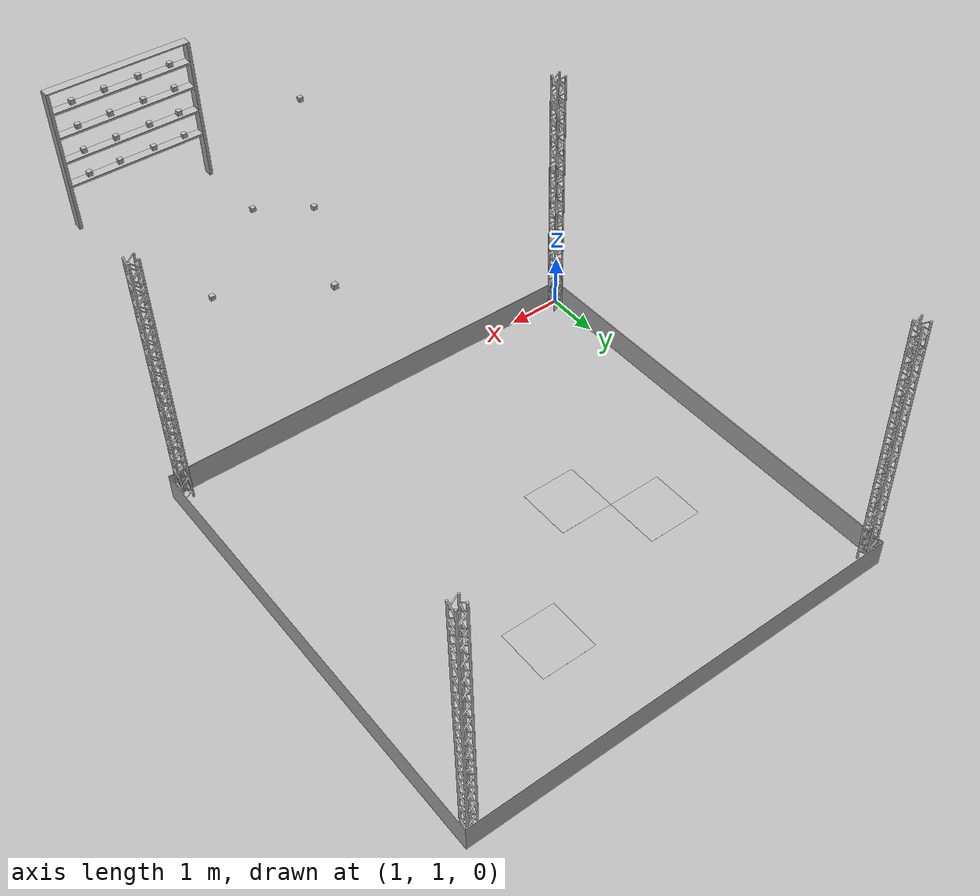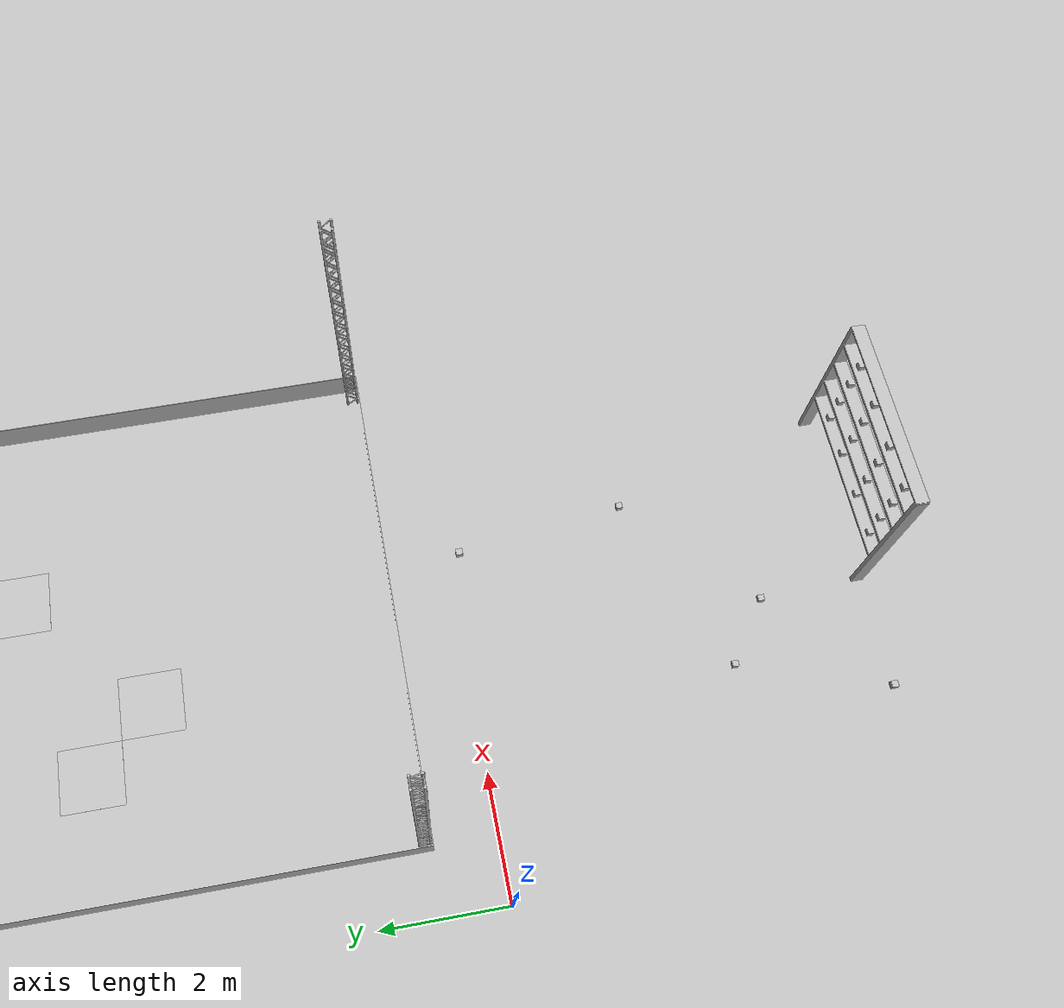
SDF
<?xml version="1.0" encoding="UTF-8"?>
<sdf version="1.9">
  <world name="default">
    <!-- Plugins compatíveis com Gz Garden -->
    <plugin name="gz::sim::systems::StaticTransformRepublisher" filename="gz-sim-static-transform-republisher-system"/>
    <plugin name="gz::sim::systems::Physics" filename="gz-sim-physics-system"/>
    <plugin name="gz::sim::systems::UserCommands" filename="gz-sim-user-commands-system"/>
    <plugin name="gz::sim::systems::SceneBroadcaster" filename="gz-sim-scene-broadcaster-system"/>
    <plugin name="gz::sim::systems::Contact" filename="gz-sim-contact-system"/>
    <plugin name="gz::sim::systems::Imu" filename="gz-sim-imu-system"/>
    <plugin name="gz::sim::systems::AirPressure" filename="gz-sim-air-pressure-system"/>
    <plugin name="gz::sim::systems::ApplyLinkWrench" filename="gz-sim-apply-link-wrench-system"/>
    <plugin name="gz::sim::systems::NavSat" filename="gz-sim-navsat-system"/>
    <plugin name="gz::sim::systems::Sensors" filename="gz-sim-sensors-system">
      <render_engine>ogre2</render_engine>
    </plugin>

    <!-- Coordenadas esféricas -->
    <spherical_coordinates>
      <surface_model>EARTH_WGS84</surface_model>
      <latitude_deg>37.411802</latitude_deg>
      <longitude_deg>-121.995739</longitude_deg>
      <elevation>0.0</elevation>
      <heading_deg>0</heading_deg>
    </spherical_coordinates>

    <!-- Configurações de física -->
    <physics name="default_physics" default="0" type="ode">
      <gravity>0 0 -9.8066</gravity>
      <max_step_size>0.004</max_step_size>
      <real_time_factor>1.0</real_time_factor>
      <real_time_update_rate>250</real_time_update_rate>
      <magnetic_field>6.0e-06 2.3e-05 -4.2e-05</magnetic_field>
    </physics>

    <!-- Configurações da cena -->
    <scene>
      <shadows>false</shadows>
      <ambient>0.4 0.4 0.4 1</ambient>
      <background>0.7 0.7 0.7 1</background>
    </scene>

    <!-- Luz do sol -->
    <light type="directional" name="sun">
      <pose>250 250 600 0 0 0</pose>
      <diffuse>0.8 0.8 0.8 1</diffuse>
      <specular>0.2 0.2 0.2 1</specular>
      <attenuation>
        <range>1000</range>
        <constant>0.9</constant>
        <linear>0.01</linear>
        <quadratic>0.001</quadratic>
      </attenuation>
      <direction>0 0 -1</direction>
    </light>

    <!-- Plano de chão -->
    <model name="ground_plane">
      <static>true</static>
      <link name="link">
        <collision name="collision">
          <geometry>
            <plane>
              <normal>0 0 1</normal>
              <size>250 250</size>
            </plane>
          </geometry>
          <surface>
            <friction>
              <ode>
                <mu>1</mu>
                <mu2>1</mu2>
              </ode>
            </friction>
          </surface>
        </collision>
        <visual name="grass">
          <geometry>
            <mesh>
              <uri>file://grass_plane/meshes/grass_plane.dae</uri>
            </mesh>
          </geometry>
        </visual>
      </link>
    </model>

    <!-- Inclusão dos modelos da arena -->
    <include>
      <uri>model://arena_spawn</uri>
      <pose>1 1 0.0005 0 0 0</pose>
    </include>

    <!-- Inclusão dos modelos de base terrestre -->
    <include>
      <uri>model://land_base</uri>
      <pose>4 5 0 0 0 0</pose>
      <name>land_base_1</name>
    </include>
    <include>
      <uri>model://land_base</uri>
      <pose>6 7 0 0 0 0</pose>
      <name>land_base_2</name>
    </include>
    <include>
      <uri>model://land_base</uri>
      <pose>3 6 0 0 0 0</pose>
      <name>land_base_3</name>
    </include>
    <include>
      <uri>model://Estante</uri>
      <pose>3 6 0 0 0 0</pose>
      <name>estante</name>
    </include>
    <include>
      <uri>model://Pacote_A</uri>
      <pose>3 1 0 0 0 0</pose>
      <name>pacote_A</name>
    </include>
    <include>
      <uri>model://Pacote_B</uri>
      <pose>3 1 0 0 0 0</pose>
      <name>pacote_B</name>
    </include>
    <include>
      <uri>model://Pacote_C</uri>
      <pose>3 1 0 0 0 0</pose>
      <name>pacote_C</name>
    </include>
    <include>
      <uri>model://Pacote_D</uri>
      <pose>3 1 0 0 0 0</pose>
      <name>pacote_D</name>
    </include>
    <include>
      <uri>model://Pacote_E</uri>
      <pose>3 1 0 0 0 0</pose>
      <name>pacote_E</name>
    </include>

    <!-- Modelo do vazio -->
    <model name="the_void">
      <static>true</static>
      <link name="link">
        <pose>0 0 0.1 0 0 0</pose>
        <visual name="the_void">
          <pose>0 0 2 0 0 0</pose>
          <geometry>
            <sphere>
              <radius>0.25</radius>
            </sphere>
          </geometry>
          <material>
            <ambient>0 0 0 1</ambient>
            <diffuse>0 0 0 1</diffuse>
            <specular>0 0 0 1</specular>
          </material>
        </visual>
      </link>
      <pose>-1000 -1000 0 0 0 0</pose>
    </model>

    <!-- Configurações da GUI -->
    <gui fullscreen="false">
      <plugin filename="MinimalScene" name="3D View">
        <gz-gui>
          <title>3D View</title>
          <property type="bool" key="showTitleBar">false</property>
          <property type="string" key="state">docked</property>
        </gz-gui>
        <engine>ogre2</engine>
        <scene>scene</scene>
        <ambient_light>0.4 0.4 0.4</ambient_light>
        <background_color>0.8 0.8 0.8</background_color>
        <camera_pose>-6 0 6 0 0.5 0</camera_pose>
        <camera_clip>
          <near>0.25</near>
          <far>25000</far>
        </camera_clip>
      </plugin>
      <plugin filename="EntityContextMenuPlugin" name="Entity context menu">
        <gz-gui>
          <property key="state" type="string">floating</property>
          <property key="width" type="double">5</property>
          <property key="height" type="double">5</property>
          <property key="showTitleBar" type="bool">false</property>
        </gz-gui>
      </plugin>
      <plugin filename="GzSceneManager" name="Scene Manager">
        <gz-gui>
          <property key="resizable" type="bool">false</property>
          <property key="width" type="double">5</property>
          <property key="height" type="double">5</property>
          <property key="state" type="string">floating</property>
          <property key="showTitleBar" type="bool">false</property>
        </gz-gui>
      </plugin>
      <plugin filename="InteractiveViewControl" name="Interactive view control">
        <gz-gui>
          <property key="resizable" type="bool">false</property>
          <property key="width" type="double">5</property>
          <property key="height" type="double">5</property>
          <property key="state" type="string">floating</property>
          <property key="showTitleBar" type="bool">false</property>
        </gz-gui>
      </plugin>
      <plugin filename="CameraTracking" name="Camera Tracking">
        <gz-gui>
          <property key="resizable" type="bool">false</property>
          <property key="width" type="double">5</property>
          <property key="height" type="double">5</property>
          <property key="state" type="string">floating</property>
          <property key="showTitleBar" type="bool">false</property>
        </gz-gui>
      </plugin>
      <plugin filename="MarkerManager" name="Marker manager">
        <gz-gui>
          <property key="resizable" type="bool">false</property>
          <property key="width" type="double">5</property>
          <property key="height" type="double">5</property>
          <property key="state" type="string">floating</property>
          <property key="showTitleBar" type="bool">false</property>
        </gz-gui>
      </plugin>
      <plugin filename="SelectEntities" name="Select Entities">
        <gz-gui>
          <anchors target="Select entities">
            <line own="right" target="right"/>
            <line own="top" target="top"/>
          </anchors>
          <property key="resizable" type="bool">false</property>
          <property key="width" type="double">5</property>
          <property key="height" type="double">5</property>
          <property key="state" type="string">floating</property>
          <property key="showTitleBar" type="bool">false</property>
        </gz-gui>
      </plugin>
      <plugin filename="VisualizationCapabilities" name="Visualization Capabilities">
        <gz-gui>
          <property key="resizable" type="bool">false</property>
          <property key="width" type="double">5</property>
          <property key="height" type="double">5</property>
          <property key="state" type="string">floating</property>
          <property key="showTitleBar" type="bool">false</property>
        </gz-gui>
      </plugin>
      <plugin filename="Spawn" name="Spawn Entities">
        <gz-gui>
          <anchors target="Select entities">
            <line own="right" target="right"/>
            <line own="top" target="top"/>
          </anchors>
          <property key="resizable" type="bool">false</property>
          <property key="width" type="double">5</property>
          <property key="height" type="double">5</property>
          <property key="state" type="string">floating</property>
          <property key="showTitleBar" type="bool">false</property>
        </gz-gui>
      </plugin>
      <plugin name="World control" filename="WorldControl">
        <gz-gui>
          <title>World control</title>
          <property type="bool" key="showTitleBar">0</property>
          <property type="bool" key="resizable">0</property>
          <property type="double" key="height">72</property>
          <property type="double" key="width">121</property>
          <property type="double" key="z">1</property>
          <property type="string" key="state">floating</property>
          <anchors target="3D View">
            <line own="left" target="left"/>
            <line own="bottom" target="bottom"/>
          </anchors>
        </gz-gui>
        <play_pause>1</play_pause>
        <step>1</step>
        <start_paused>1</start_paused>
      </plugin>
      <plugin name="World stats" filename="WorldStats">
        <gz-gui>
          <title>World stats</title>
          <property type="bool" key="showTitleBar">0</property>
          <property type="bool" key="resizable">0</property>
          <property type="double" key="height">110</property>
          <property type="double" key="width">290</property>
          <property type="double" key="z">1</property>
          <property type="string" key="state">floating</property>
          <anchors target="3D View">
            <line own="right" target="right"/>
            <line own="bottom" target="bottom"/>
          </anchors>
        </gz-gui>
        <sim_time>1</sim_time>
        <real_time>1</real_time>
        <real_time_factor>1</real_time_factor>
        <iterations>1</iterations>
      </plugin>
      <plugin name="Entity tree" filename="EntityTree"/>
    </gui>
    <gravity>0 0 -9.8</gravity>
    <magnetic_field>6e-06 2.3e-05 -4.2e-05</magnetic_field>
    <atmosphere type="adiabatic"/>
  </world>
</sdf>

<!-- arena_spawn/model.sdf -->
<sdf version='1.6'>
  <model name='arena_spawn'>
    <link name='link_arena'>
      <inertial>
        <mass>15</mass>
        <inertia>
          <ixx>1</ixx>
          <ixy>1</ixy>
          <ixz>1</ixz>
          <iyy>1</iyy>
          <iyz>1</iyz>
          <izz>1</izz>
        </inertia>
      </inertial>
      <self_collide>1</self_collide>
      <enable_wind>0</enable_wind>
      <kinematic>0</kinematic>
      <pose frame=''>0 0 0 0 -0 0</pose>
      <visual name='visual'>
        <pose frame=''>0 0 0 0 -0 0</pose>
        <geometry>
          <mesh>
            <uri>model://arena_spawn/meshes/Arena.obj</uri>
            <scale>1 1 1</scale>
          </mesh>
        </geometry>
        <transparency>0</transparency>
        <cast_shadows>1</cast_shadows>
      </visual>
      <collision name='collision'>
        <laser_retro>0</laser_retro>
        <max_contacts>10</max_contacts>
        <pose frame=''>0 0 0 0 -0 0</pose>
        <geometry>
          <mesh>
            <uri>model://arena_spawn/meshes/Arena.obj</uri>
            <scale>1 1 1</scale>
          </mesh>
        </geometry>
        <surface>
          <friction>
            <ode>
              <mu>1</mu>
              <mu2>1</mu2>
              <fdir1>0 0 0</fdir1>
              <slip1>0</slip1>
              <slip2>0</slip2>
            </ode>
            <torsional>
              <coefficient>1</coefficient>
              <patch_radius>100</patch_radius>
              <surface_radius>100</surface_radius>
              <use_patch_radius>1</use_patch_radius>
              <ode>
                <slip>0</slip>
              </ode>
            </torsional>
          </friction>
          <bounce>
            <restitution_coefficient>0</restitution_coefficient>
            <threshold>1e+06</threshold>
          </bounce>
          <contact>
            <collide_without_contact>0</collide_without_contact>
            <collide_without_contact_bitmask>1</collide_without_contact_bitmask>
            <collide_bitmask>1</collide_bitmask>
            <ode>
              <soft_cfm>0</soft_cfm>
              <soft_erp>0.2</soft_erp>
              <kp>1e+13</kp>
              <kd>1</kd>
              <max_vel>0.01</max_vel>
              <min_depth>0</min_depth>
            </ode>
            <bullet>
              <split_impulse>1</split_impulse>
              <split_impulse_penetration_threshold>-0.01</split_impulse_penetration_threshold>
              <soft_cfm>0</soft_cfm>
              <soft_erp>0.2</soft_erp>
              <kp>1e+13</kp>
              <kd>1</kd>
            </bullet>
          </contact>
        </surface>
      </collision>
    </link>
    <link name='pilar_1'>
      <inertial>
        <mass>1</mass>
        <inertia>
          <ixx>0.166667</ixx>
          <ixy>0</ixy>
          <ixz>0</ixz>
          <iyy>0.166667</iyy>
          <iyz>0</iyz>
          <izz>0.166667</izz>
        </inertia>
      </inertial>
      <self_collide>1</self_collide>
      <enable_wind>0</enable_wind>
      <kinematic>0</kinematic>
      <pose frame=''>0 0 0 0 -0 0</pose>
      <visual name='visual'>
        <pose frame=''>0 0 0 0 -0 0</pose>
        <geometry>
          <mesh>
            <uri>model://arena_spawn/meshes/pilar.obj</uri>
            <scale>1 1 1</scale>
          </mesh>
        </geometry>
        <transparency>0</transparency>
        <cast_shadows>1</cast_shadows>
      </visual>
      <collision name='collision'>
        <laser_retro>0</laser_retro>
        <max_contacts>10</max_contacts>
        <pose frame=''>0 0 0 0 -0 0</pose>
        <geometry>
          <mesh>
            <uri>model://arena_spawn/meshes/pilar.obj</uri>
            <scale>1 1 1</scale>
          </mesh>
        </geometry>
        <surface>
          <friction>
            <ode>
              <mu>1</mu>
              <mu2>1</mu2>
              <fdir1>0 0 0</fdir1>
              <slip1>0</slip1>
              <slip2>0</slip2>
            </ode>
            <torsional>
              <coefficient>1</coefficient>
              <patch_radius>100</patch_radius>
              <surface_radius>100</surface_radius>
              <use_patch_radius>1</use_patch_radius>
              <ode>
                <slip>0</slip>
              </ode>
            </torsional>
          </friction>
          <bounce>
            <restitution_coefficient>0</restitution_coefficient>
            <threshold>1e+06</threshold>
          </bounce>
          <contact>
            <collide_without_contact>0</collide_without_contact>
            <collide_without_contact_bitmask>1</collide_without_contact_bitmask>
            <collide_bitmask>1</collide_bitmask>
            <ode>
              <soft_cfm>0</soft_cfm>
              <soft_erp>0.2</soft_erp>
              <kp>1e+13</kp>
              <kd>1</kd>
              <max_vel>0.01</max_vel>
              <min_depth>0</min_depth>
            </ode>
            <bullet>
              <split_impulse>1</split_impulse>
              <split_impulse_penetration_threshold>-0.01</split_impulse_penetration_threshold>
              <soft_cfm>0</soft_cfm>
              <soft_erp>0.2</soft_erp>
              <kp>1e+13</kp>
              <kd>1</kd>
            </bullet>
          </contact>
        </surface>
      </collision>
    </link>
    <link name='pilar_2'>
      <inertial>
        <mass>1</mass>
        <inertia>
          <ixx>0.166667</ixx>
          <ixy>0</ixy>
          <ixz>0</ixz>
          <iyy>0.166667</iyy>
          <iyz>0</iyz>
          <izz>0.166667</izz>
        </inertia>
      </inertial>
      <self_collide>1</self_collide>
      <enable_wind>0</enable_wind>
      <kinematic>0</kinematic>
      <pose frame=''>7.7 0 0 0 -0 0</pose>
      <visual name='visual'>
        <pose frame=''>0 0 0 0 -0 0</pose>
        <geometry>
          <mesh>
            <uri>model://arena_spawn/meshes/pilar.obj</uri>
            <scale>1 1 1</scale>
          </mesh>
        </geometry>
        <transparency>0</transparency>
        <cast_shadows>1</cast_shadows>
      </visual>
      <collision name='collision'>
        <laser_retro>0</laser_retro>
        <max_contacts>10</max_contacts>
        <pose frame=''>0 0 0 0 -0 0</pose>
        <geometry>
          <mesh>
            <uri>model://arena_spawn/meshes/pilar.obj</uri>
            <scale>1 1 1</scale>
          </mesh>
        </geometry>
        <surface>
          <friction>
            <ode>
              <mu>1</mu>
              <mu2>1</mu2>
              <fdir1>0 0 0</fdir1>
              <slip1>0</slip1>
              <slip2>0</slip2>
            </ode>
            <torsional>
              <coefficient>1</coefficient>
              <patch_radius>100</patch_radius>
              <surface_radius>100</surface_radius>
              <use_patch_radius>1</use_patch_radius>
              <ode>
                <slip>0</slip>
              </ode>
            </torsional>
          </friction>
          <bounce>
            <restitution_coefficient>0</restitution_coefficient>
            <threshold>1e+06</threshold>
          </bounce>
          <contact>
            <collide_without_contact>0</collide_without_contact>
            <collide_without_contact_bitmask>1</collide_without_contact_bitmask>
            <collide_bitmask>1</collide_bitmask>
            <ode>
              <soft_cfm>0</soft_cfm>
              <soft_erp>0.2</soft_erp>
              <kp>1e+13</kp>
              <kd>1</kd>
              <max_vel>0.01</max_vel>
              <min_depth>0</min_depth>
            </ode>
            <bullet>
              <split_impulse>1</split_impulse>
              <split_impulse_penetration_threshold>-0.01</split_impulse_penetration_threshold>
              <soft_cfm>0</soft_cfm>
              <soft_erp>0.2</soft_erp>
              <kp>1e+13</kp>
              <kd>1</kd>
            </bullet>
          </contact>
        </surface>
      </collision>
    </link>
    <link name='pilar_3'>
      <inertial>
        <mass>1</mass>
        <inertia>
          <ixx>0.166667</ixx>
          <ixy>0</ixy>
          <ixz>0</ixz>
          <iyy>0.166667</iyy>
          <iyz>0</iyz>
          <izz>0.166667</izz>
        </inertia>
      </inertial>
      <self_collide>1</self_collide>
      <enable_wind>0</enable_wind>
      <kinematic>0</kinematic>
      <pose frame=''>0 7.7 0 0 -0 0</pose>
      <visual name='visual'>
        <pose frame=''>0 0 0 0 -0 0</pose>
        <geometry>
          <mesh>
            <uri>model://arena_spawn/meshes/pilar.obj</uri>
            <scale>1 1 1</scale>
          </mesh>
        </geometry>
        <transparency>0</transparency>
        <cast_shadows>1</cast_shadows>
      </visual>
      <collision name='collision'>
        <laser_retro>0</laser_retro>
        <max_contacts>10</max_contacts>
        <pose frame=''>0 0 0 0 -0 0</pose>
        <geometry>
          <mesh>
            <uri>model://arena_spawn/meshes/pilar.obj</uri>
            <scale>1 1 1</scale>
          </mesh>
        </geometry>
        <surface>
          <friction>
            <ode>
              <mu>1</mu>
              <mu2>1</mu2>
              <fdir1>0 0 0</fdir1>
              <slip1>0</slip1>
              <slip2>0</slip2>
            </ode>
            <torsional>
              <coefficient>1</coefficient>
              <patch_radius>100</patch_radius>
              <surface_radius>100</surface_radius>
              <use_patch_radius>1</use_patch_radius>
              <ode>
                <slip>0</slip>
              </ode>
            </torsional>
          </friction>
          <bounce>
            <restitution_coefficient>0</restitution_coefficient>
            <threshold>1e+06</threshold>
          </bounce>
          <contact>
            <collide_without_contact>0</collide_without_contact>
            <collide_without_contact_bitmask>1</collide_without_contact_bitmask>
            <collide_bitmask>1</collide_bitmask>
            <ode>
              <soft_cfm>0</soft_cfm>
              <soft_erp>0.2</soft_erp>
              <kp>1e+13</kp>
              <kd>1</kd>
              <max_vel>0.01</max_vel>
              <min_depth>0</min_depth>
            </ode>
            <bullet>
              <split_impulse>1</split_impulse>
              <split_impulse_penetration_threshold>-0.01</split_impulse_penetration_threshold>
              <soft_cfm>0</soft_cfm>
              <soft_erp>0.2</soft_erp>
              <kp>1e+13</kp>
              <kd>1</kd>
            </bullet>
          </contact>
        </surface>
      </collision>
    </link>
    <link name='pilar_4'>
      <inertial>
        <mass>1</mass>
        <inertia>
          <ixx>0.166667</ixx>
          <ixy>0</ixy>
          <ixz>0</ixz>
          <iyy>0.166667</iyy>
          <iyz>0</iyz>
          <izz>0.166667</izz>
        </inertia>
      </inertial>
      <self_collide>1</self_collide>
      <enable_wind>0</enable_wind>
      <kinematic>0</kinematic>
      <pose frame=''>7.7 7.7 0 0 -0 0</pose>
      <visual name='visual'>
        <pose frame=''>0 0 0 0 -0 0</pose>
        <geometry>
          <mesh>
            <uri>model://arena_spawn/meshes/pilar.obj</uri>
            <scale>1 1 1</scale>
          </mesh>
        </geometry>
        <transparency>0</transparency>
        <cast_shadows>1</cast_shadows>
      </visual>
      <collision name='collision'>
        <laser_retro>0</laser_retro>
        <max_contacts>10</max_contacts>
        <pose frame=''>0 0 0 0 -0 0</pose>
        <geometry>
          <mesh>
            <uri>model://arena_spawn/meshes/pilar.obj</uri>
            <scale>1 1 1</scale>
          </mesh>
        </geometry>
        <surface>
          <friction>
            <ode>
              <mu>1</mu>
              <mu2>1</mu2>
              <fdir1>0 0 0</fdir1>
              <slip1>0</slip1>
              <slip2>0</slip2>
            </ode>
            <torsional>
              <coefficient>1</coefficient>
              <patch_radius>100</patch_radius>
              <surface_radius>100</surface_radius>
              <use_patch_radius>1</use_patch_radius>
              <ode>
                <slip>0</slip>
              </ode>
            </torsional>
          </friction>
          <bounce>
            <restitution_coefficient>0</restitution_coefficient>
            <threshold>1e+06</threshold>
          </bounce>
          <contact>
            <collide_without_contact>0</collide_without_contact>
            <collide_without_contact_bitmask>1</collide_without_contact_bitmask>
            <collide_bitmask>1</collide_bitmask>
            <ode>
              <soft_cfm>0</soft_cfm>
              <soft_erp>0.2</soft_erp>
              <kp>1e+13</kp>
              <kd>1</kd>
              <max_vel>0.01</max_vel>
              <min_depth>0</min_depth>
            </ode>
            <bullet>
              <split_impulse>1</split_impulse>
              <split_impulse_penetration_threshold>-0.01</split_impulse_penetration_threshold>
              <soft_cfm>0</soft_cfm>
              <soft_erp>0.2</soft_erp>
              <kp>1e+13</kp>
              <kd>1</kd>
            </bullet>
          </contact>
        </surface>
      </collision>
    </link>
    <static>1</static>
    <pose frame=''>0 0 0.0005 0 -0 0</pose>
  </model>
</sdf>

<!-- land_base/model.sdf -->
<sdf version='1.6'>
  <model name='land_base'>
    <link name='link_E'>
      <inertial>
        <mass>1</mass>
        <inertia>
          <ixx>0.166667</ixx>
          <ixy>0</ixy>
          <ixz>0</ixz>
          <iyy>0.166667</iyy>
          <iyz>0</iyz>
          <izz>0.166667</izz>
        </inertia>
      </inertial>
      <pose frame=''>0 0 0 0 -0 0</pose>
      <visual name='visual'>
        <pose frame=''>0 0 0 0 -0 0</pose>
        <geometry>
          <mesh>
            <uri>model://land_base/meshes/land_base_1.obj</uri>
            <scale>1 1 1</scale>
          </mesh>
        </geometry>
        <transparency>0</transparency>
        <cast_shadows>1</cast_shadows>
      </visual>
      <collision name='collision'>
        <laser_retro>0</laser_retro>
        <max_contacts>100</max_contacts>
        <pose frame=''>0 0 0 0 -0 0</pose>
        <geometry>
          <mesh>
            <uri>model://land_base/meshes/land_base_1.obj</uri>
            <scale>1 1 1</scale>
          </mesh>
        </geometry>
        <surface>
          <friction>
            <ode>
              <mu>100</mu>
              <mu2>100</mu2>
              <fdir1>0 0 0</fdir1>
              <slip1>0</slip1>
              <slip2>0</slip2>
            </ode>
            <torsional>
              <coefficient>1</coefficient>
              <patch_radius>1</patch_radius>
              <surface_radius>1</surface_radius>
              <use_patch_radius>1</use_patch_radius>
              <ode>
                <slip>0</slip>
              </ode>
            </torsional>
          </friction>
          <bounce>
            <restitution_coefficient>1</restitution_coefficient>
            <threshold>1e+06</threshold>
          </bounce>
          <contact>
            <collide_without_contact>0</collide_without_contact>
            <collide_without_contact_bitmask>1</collide_without_contact_bitmask>
            <collide_bitmask>1</collide_bitmask>
            <ode>
              <soft_cfm>0</soft_cfm>
              <soft_erp>0.2</soft_erp>
              <kp>1e+13</kp>
              <kd>1</kd>
              <max_vel>0.01</max_vel>
              <min_depth>0</min_depth>
            </ode>
            <bullet>
              <split_impulse>1</split_impulse>
              <split_impulse_penetration_threshold>-0.01</split_impulse_penetration_threshold>
              <soft_cfm>0</soft_cfm>
              <soft_erp>0.2</soft_erp>
              <kp>1e+13</kp>
              <kd>1</kd>
            </bullet>
          </contact>
        </surface>
      </collision>
    </link>
    <static>1</static>
    <allow_auto_disable>1</allow_auto_disable>
  </model>
</sdf>

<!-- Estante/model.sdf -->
<sdf version="1.9">
  <model name="Estante">
    <static>true</static> <!-- Define como false para que o objeto tenha física -->
    <link name="link_E">
      <pose>7.2 -15 0 -11 0 11</pose>

      <inertial>
        <mass>5.0</mass> <!-- Define a massa do objeto -->
        <inertia> <!-- Define o momento de inércia -->
          <ixx>0.2</ixx>
          <ixy>0.2</ixy>
          <ixz>0.2</ixz>
        </inertia>
      </inertial>
      <gravity>true</gravity>
      <collision name="collision">
        <geometry>
          <mesh>
            <uri>model://Estante/meshes/estantedef.obj</uri>
            <scale>1 1 1</scale>
          </mesh>
        </geometry>
      </collision>

      <visual name="visual">
        <geometry>
          <mesh>
            <uri>model://Estante/meshes/estantedef.obj</uri>
            <scale>1 1 1</scale>
          </mesh>
        </geometry>
      </visual>
    </link>
  </model>
</sdf>

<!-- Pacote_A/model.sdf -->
<sdf version="1.9">
  <model name="pacote A">
    <static>true</static> <!-- Define como false para que o objeto tenha física -->
    <link name="link_00">
      <pose>-1 -7.1 1.18 -11 0 0</pose>

      <inertial>
        <mass>10.0</mass> <!-- Define a massa do objeto -->
        <inertia> <!-- Define o momento de inércia -->
          <ixx>0.4</ixx>
          <ixy>0.0</ixy> <!-- Componentes cruzadas de inércia zeradas -->
          <ixz>0.0</ixz>
          <iyy>0.4</iyy>
          <iyz>0.0</iyz>
          <izz>0.4</izz>
        </inertia>
      </inertial>
      <gravity>true</gravity>
      <collision name="collision">
        <geometry>
          <mesh>
            <uri>model://Pacote_A/meshes/pacote.obj</uri>
            <scale>1 1 1</scale>
          </mesh>
        </geometry>
        <surface>
          <friction>
            <ode>
              <mu>1.0</mu> <!-- Coeficiente de fricção -->
              <mu2>1.0</mu2>
            </ode>
          </friction>
        </surface>
      </collision>

      <visual name="visual">
        <geometry>
          <mesh>
            <uri>model://Pacote_A/meshes/pacote.obj</uri>
            <scale>1 1 1</scale>
          </mesh>
        </geometry>
      </visual>
    </link>
  </model>
</sdf>

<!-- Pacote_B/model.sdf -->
<sdf version="1.9">
  <model name="pacote B">
    <static>true</static> <!-- Define como false para que o objeto tenha física -->
    <link name="link_00">
      <pose>0 -5.2 0.02 -11 0 0</pose>

      <inertial>
        <mass>10.0</mass> <!-- Define a massa do objeto -->
        <inertia> <!-- Define o momento de inércia -->
          <ixx>0.4</ixx>
          <ixy>0.0</ixy> <!-- Componentes cruzadas de inércia zeradas -->
          <ixz>0.0</ixz>
          <iyy>0.4</iyy>
          <iyz>0.0</iyz>
          <izz>0.4</izz>
        </inertia>
      </inertial>
      <gravity>true</gravity>
      <collision name="collision">
        <geometry>
          <mesh>
            <uri>model://Pacote_B/meshes/pacote.obj</uri>
            <scale>1 1 1</scale>
          </mesh>
        </geometry>
        <surface>
          <friction>
            <ode>
              <mu>1.0</mu> <!-- Coeficiente de fricção -->
              <mu2>1.0</mu2>
            </ode>
          </friction>
        </surface>
      </collision>

      <visual name="visual">
        <geometry>
          <mesh>
            <uri>model://Pacote_B/meshes/pacote.obj</uri>
            <scale>1 1 1</scale>
          </mesh>
        </geometry>
      </visual>
    </link>
  </model>
</sdf>

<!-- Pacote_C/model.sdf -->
<sdf version="1.9">
  <model name="pacote C">
    <static>true</static> <!-- Define como false para que o objeto tenha física -->
    <link name="link_00">
      <pose>2 -1.1 1.68 -11 0 0</pose>

      <inertial>
        <mass>10.0</mass> <!-- Define a massa do objeto -->
        <inertia> <!-- Momento de inércia ajustado -->
          <ixx>0.4</ixx>
          <ixy>0.0</ixy> <!-- Componentes cruzadas de inércia zeradas -->
          <ixz>0.0</ixz>
          <iyy>0.4</iyy>
          <iyz>0.0</iyz>
          <izz>0.4</izz>
        </inertia>
      </inertial>
      <gravity>true</gravity>
      <collision name="collision">
        <geometry>
          <mesh>
            <uri>model://Pacote_C/meshes/pacote.obj</uri>
            <scale>1 1 1</scale>
          </mesh>
        </geometry>
        <surface>
          <friction>
            <ode>
              <mu>1.0</mu> <!-- Coeficiente de fricção -->
              <mu2>1.0</mu2>
            </ode>
          </friction>
        </surface>
      </collision>

      <visual name="visual">
        <geometry>
          <mesh>
            <uri>model://Pacote_C/meshes/pacote.obj</uri>
            <scale>1 1 1</scale>
          </mesh>
        </geometry>
      </visual>
    </link>
  </model>
</sdf>

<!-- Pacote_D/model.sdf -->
<sdf version="1.9">
  <model name="pacote D">
    <static>true</static> <!-- Define como false para que o objeto tenha física -->
    <link name="link_00">
      <pose>3 -4 0.02 -11 0 0</pose>

      <inertial>
        <mass>10.0</mass> <!-- Define a massa do objeto -->
        <inertia> <!-- Momento de inércia ajustado -->
          <ixx>0.4</ixx>
          <ixy>0.0</ixy> <!-- Componentes cruzadas de inércia zeradas -->
          <ixz>0.0</ixz>
          <iyy>0.4</iyy>
          <iyz>0.0</iyz>
          <izz>0.4</izz>
        </inertia>
      </inertial>
      <gravity>true</gravity>
      <collision name="collision">
        <geometry>
          <mesh>
            <uri>model://Pacote_D/meshes/pacote.obj</uri>
            <scale>1 1 1</scale>
          </mesh>
        </geometry>
         <surface>
          <friction>
            <ode>
              <mu>1.0</mu> <!-- Coeficiente de fricção -->
              <mu2>1.0</mu2>
            </ode>
          </friction>
        </surface>
      </collision>

      <visual name="visual">
        <geometry>
          <mesh>
            <uri>model://Pacote_D/meshes/pacote.obj</uri>
            <scale>1 1 1</scale>
          </mesh>
        </geometry>
      </visual>
    </link>
  </model>
</sdf>

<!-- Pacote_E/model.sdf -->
<sdf version="1.9">
  <model name="pacote E">
    <static>true</static> <!-- Define como false para que o objeto tenha física -->
    <link name="link_00">
      <pose>1 -5.9 0.02 -11 0 0</pose>

      <inertial>
        <mass>10.0</mass> <!-- Define a massa do objeto -->
         <inertia> <!-- Momento de inércia ajustado -->
          <ixx>0.4</ixx>
          <ixy>0.0</ixy> <!-- Componentes cruzadas de inércia zeradas -->
          <ixz>0.0</ixz>
          <iyy>0.4</iyy>
          <iyz>0.0</iyz>
          <izz>0.4</izz>
        </inertia>
      </inertial>
      <gravity>true</gravity>
      <collision name="collision">
        <geometry>
          <mesh>
            <uri>model://Pacote_E/meshes/pacote.obj</uri>
            <scale>1 1 1</scale>
          </mesh>
        </geometry>
         <surface>
          <friction>
            <ode>
              <mu>1.0</mu> <!-- Coeficiente de fricção -->
              <mu2>1.0</mu2>
            </ode>
          </friction>
        </surface>
      </collision>

      <visual name="visual">
        <geometry>
          <mesh>
            <uri>model://Pacote_E/meshes/pacote.obj</uri>
            <scale>1 1 1</scale>
          </mesh>
        </geometry>
      </visual>
    </link>
  </model>
</sdf>
